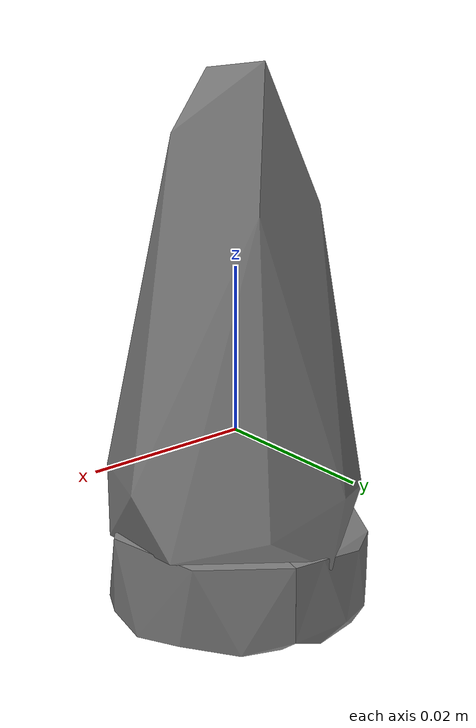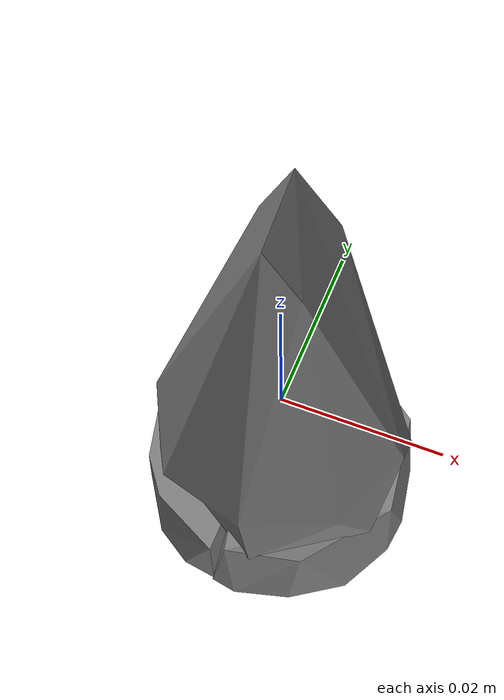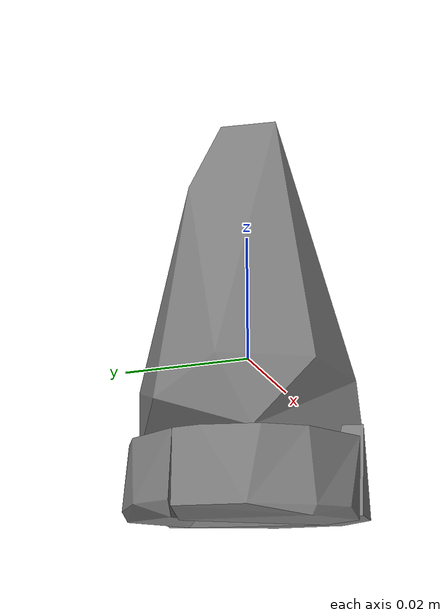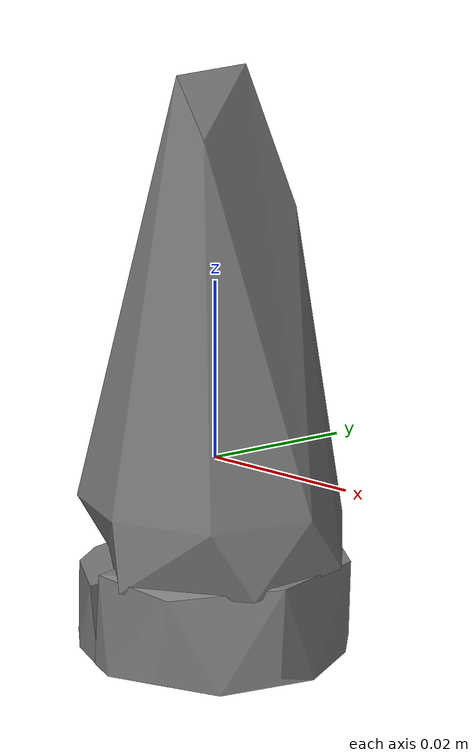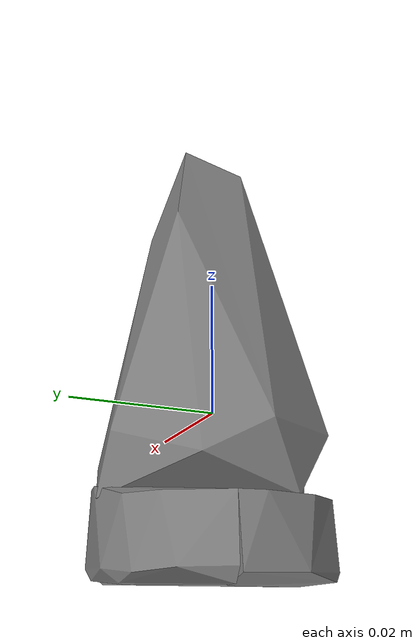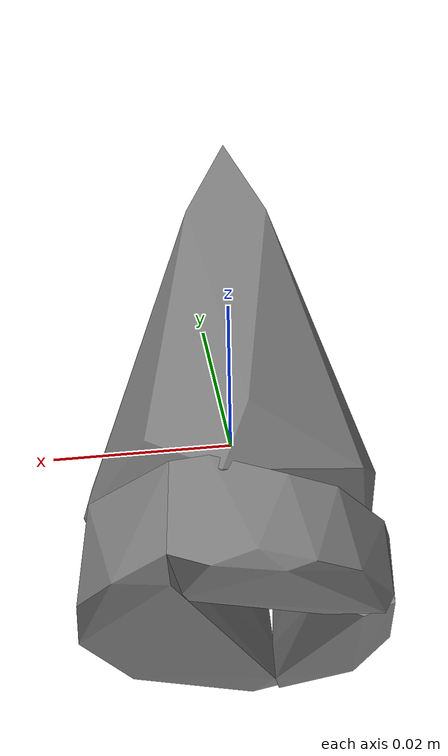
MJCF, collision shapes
<mujoco model="e_toy_airplane">
  <compiler angle="radian" />

  <asset>
    <mesh name="e_toy_airplane_visual_mesh" file="e_toy_airplane/textured.obj" />
    <mesh name="e_toy_airplane_collision_mesh_0" file="e_toy_airplane/textured_coacd_0.stl" />
    <mesh name="e_toy_airplane_collision_mesh_1" file="e_toy_airplane/textured_coacd_1.stl" />
    <mesh name="e_toy_airplane_collision_mesh_2" file="e_toy_airplane/textured_coacd_2.stl" />
    <mesh name="e_toy_airplane_collision_mesh_3" file="e_toy_airplane/textured_coacd_3.stl" />
    <texture name="e_toy_airplane_texture" type="2d" file="e_toy_airplane/texture_map.png" />
    <material name="e_toy_airplane_material" texture="e_toy_airplane_texture" />
  </asset>

  <worldbody>
    <body name="e_toy_airplane" pos="0 0 0" euler="0 0 0">
      <freejoint name="e_toy_airplane_joint" />
      <geom name="e_toy_airplane_visual_geom" type="mesh" mesh="e_toy_airplane_visual_mesh" material="e_toy_airplane_material" pos="0.015461052619458251 0.007752454040306524 -0.021859940254387186" euler="0 0 0" contype="0" conaffinity="0" group="0" />
      <geom name="e_toy_airplane_collision_geom_0" type="mesh" mesh="e_toy_airplane_collision_mesh_0" pos="0.015461052619458251 0.007752454040306524 -0.021859940254387186" euler="0 0 0" contype="1" conaffinity="1" group="3" />
      <geom name="e_toy_airplane_collision_geom_1" type="mesh" mesh="e_toy_airplane_collision_mesh_1" pos="0.015461052619458251 0.007752454040306524 -0.021859940254387186" euler="0 0 0" contype="1" conaffinity="1" group="3" />
      <geom name="e_toy_airplane_collision_geom_2" type="mesh" mesh="e_toy_airplane_collision_mesh_2" pos="0.015461052619458251 0.007752454040306524 -0.021859940254387186" euler="0 0 0" contype="1" conaffinity="1" group="3" />
      <geom name="e_toy_airplane_collision_geom_3" type="mesh" mesh="e_toy_airplane_collision_mesh_3" pos="0.015461052619458251 0.007752454040306524 -0.021859940254387186" euler="0 0 0" contype="1" conaffinity="1" group="3" />
      <inertial pos="0 0 0" euler="0 0 0" mass="0.114" diaginertia="0.001 0.001 0.001" />
    </body>
  </worldbody>
</mujoco>
